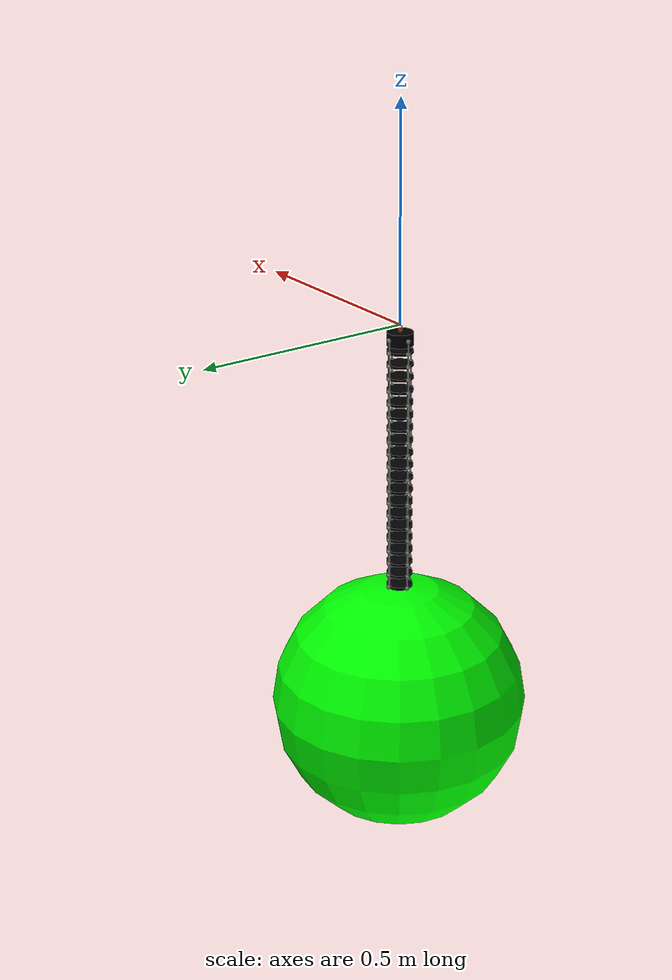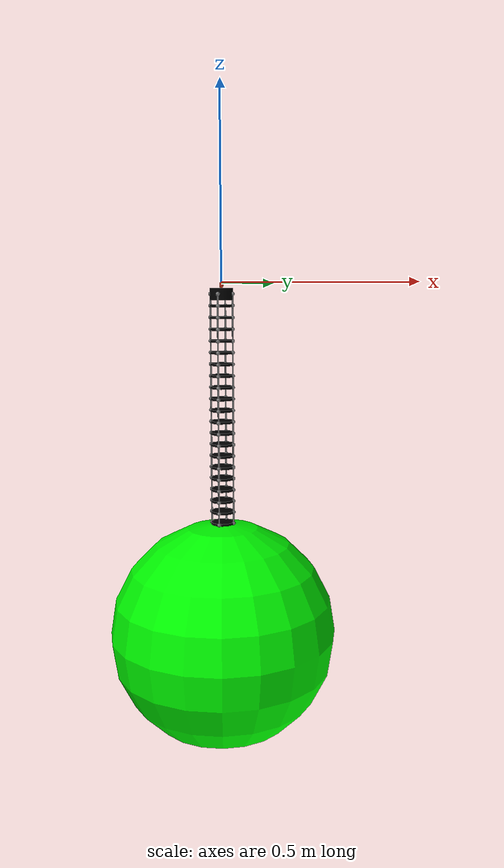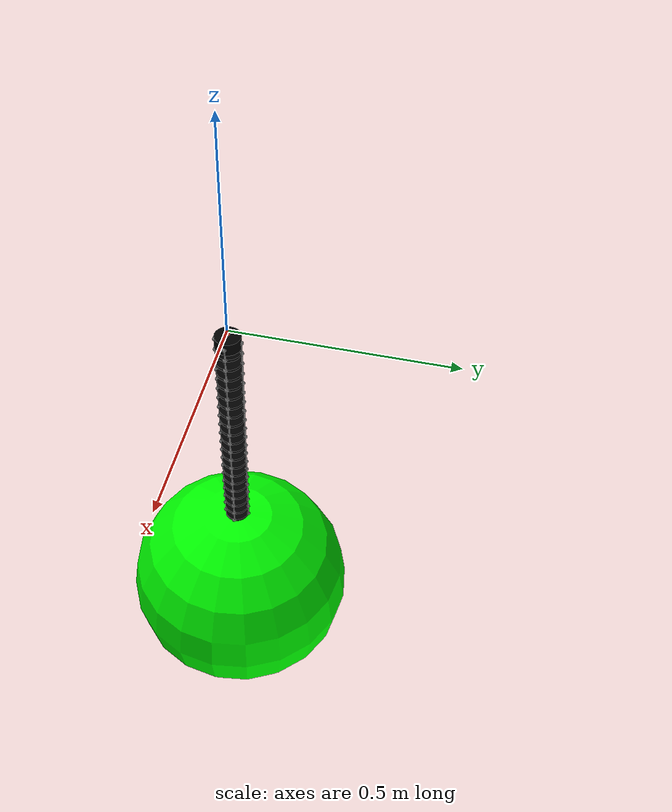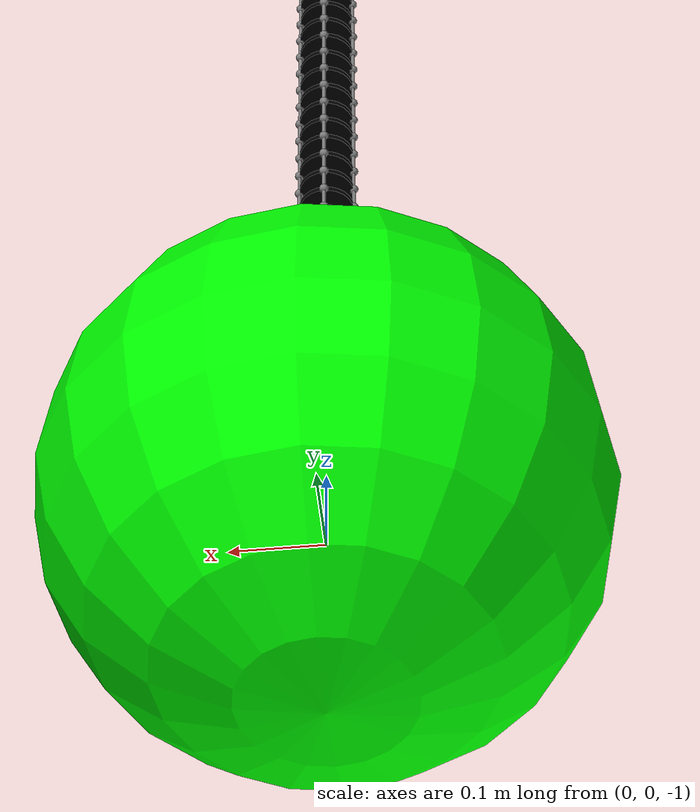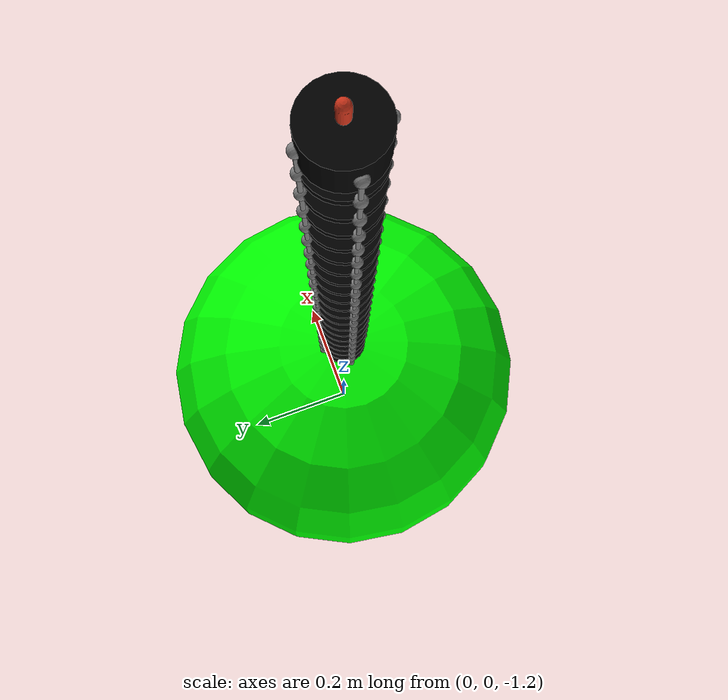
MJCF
<mujoco model="trunk">
        <compiler angle="radian"/>
        <option timestep="0.002"/>
        <extension>
            <plugin plugin="mujoco.elasticity.cable">
            <instance name="compositeactuated">
                <config key="twist" value="1e8"/>
                <config key="bend" value="1e8"/>
                <config key="vmax" value="0"/>
            </instance>
            </plugin>
        </extension>

        <visual>
            <global offwidth="1920" offheight="1080" elevation="0"/>
        </visual>
        <asset>
            <texture type="skybox" builtin="gradient" rgb1=".6 .8 1" rgb2=".6 .8 1" width="1" height="1"/>
        </asset>

        <worldbody>
            <light pos="0 -1 -1" dir="0 -1 -1" diffuse="1 1 1"/>
            <body name="base" pos="0 0 0" quat="0 -0.707107 0 0.707107">
                <geom name="base" size="0.005 0.005" pos="0.005 0 0" quat="0.707107 0 -0.707107 0" type="capsule" rgba="0.8 0.2 0.1 1"/>

        <body name="link_1" pos="0.030000000000000002 0 0">

            <geom name="geom_1" size="0.03 0.015000000000000001" density="0.01" pos="0 0 0" quat="0.707107 0 -0.707107 0" type="cylinder" rgba="0 0 0 1"/>
            <site name="site_y_front_1" pos="0 0.03 0"/>
            <site name="site_y_back_1" pos="0 -0.03 0"/>
            <site name="site_z_front_1" pos="0 0 0.03"/>
            <site name="site_z_back_1" pos="0 0 -0.03"/>

        <body name="link_2" pos="0.030000000000000002 0 0">
            <joint name="joint_2" pos="0 0 0" type="ball" group="3" actuatorfrclimited="false" armature="0.01" damping="1.0" stiffness="20.0"/>
            <geom name="geom_2" size="0.03 0.003" density="0.01" pos="0 0 0" quat="0.707107 0 -0.707107 0" type="cylinder" rgba="0 0 0 1"/>
            <site name="site_y_front_2" pos="0 0.03 0"/>
            <site name="site_y_back_2" pos="0 -0.03 0"/>
            <site name="site_z_front_2" pos="0 0 0.03"/>
            <site name="site_z_back_2" pos="0 0 -0.03"/>

        <body name="link_3" pos="0.030000000000000002 0 0">
            <joint name="joint_3" pos="0 0 0" type="ball" group="3" actuatorfrclimited="false" armature="0.01" damping="1.0" stiffness="20.0"/>
            <geom name="geom_3" size="0.03 0.003" density="0.01" pos="0 0 0" quat="0.707107 0 -0.707107 0" type="cylinder" rgba="0 0 0 1"/>
            <site name="site_y_front_3" pos="0 0.03 0"/>
            <site name="site_y_back_3" pos="0 -0.03 0"/>
            <site name="site_z_front_3" pos="0 0 0.03"/>
            <site name="site_z_back_3" pos="0 0 -0.03"/>

        <body name="link_4" pos="0.030000000000000002 0 0">
            <joint name="joint_4" pos="0 0 0" type="ball" group="3" actuatorfrclimited="false" armature="0.01" damping="1.0" stiffness="20.0"/>
            <geom name="geom_4" size="0.03 0.003" density="0.01" pos="0 0 0" quat="0.707107 0 -0.707107 0" type="cylinder" rgba="0 0 0 1"/>
            <site name="site_y_front_4" pos="0 0.03 0"/>
            <site name="site_y_back_4" pos="0 -0.03 0"/>
            <site name="site_z_front_4" pos="0 0 0.03"/>
            <site name="site_z_back_4" pos="0 0 -0.03"/>

        <body name="link_5" pos="0.030000000000000002 0 0">
            <joint name="joint_5" pos="0 0 0" type="ball" group="3" actuatorfrclimited="false" armature="0.01" damping="1.0" stiffness="20.0"/>
            <geom name="geom_5" size="0.03 0.003" density="0.01" pos="0 0 0" quat="0.707107 0 -0.707107 0" type="cylinder" rgba="0 0 0 1"/>
            <site name="site_y_front_5" pos="0 0.03 0"/>
            <site name="site_y_back_5" pos="0 -0.03 0"/>
            <site name="site_z_front_5" pos="0 0 0.03"/>
            <site name="site_z_back_5" pos="0 0 -0.03"/>

        <body name="link_6" pos="0.030000000000000002 0 0">
            <joint name="joint_6" pos="0 0 0" type="ball" group="3" actuatorfrclimited="false" armature="0.01" damping="1.0" stiffness="20.0"/>
            <geom name="geom_6" size="0.03 0.003" density="0.01" pos="0 0 0" quat="0.707107 0 -0.707107 0" type="cylinder" rgba="0 0 0 1"/>
            <site name="site_y_front_6" pos="0 0.03 0"/>
            <site name="site_y_back_6" pos="0 -0.03 0"/>
            <site name="site_z_front_6" pos="0 0 0.03"/>
            <site name="site_z_back_6" pos="0 0 -0.03"/>

        <body name="link_7" pos="0.030000000000000002 0 0">
            <joint name="joint_7" pos="0 0 0" type="ball" group="3" actuatorfrclimited="false" armature="0.01" damping="1.0" stiffness="20.0"/>
            <geom name="geom_7" size="0.03 0.003" density="0.01" pos="0 0 0" quat="0.707107 0 -0.707107 0" type="cylinder" rgba="0 0 0 1"/>
            <site name="site_y_front_7" pos="0 0.03 0"/>
            <site name="site_y_back_7" pos="0 -0.03 0"/>
            <site name="site_z_front_7" pos="0 0 0.03"/>
            <site name="site_z_back_7" pos="0 0 -0.03"/>

        <body name="link_8" pos="0.030000000000000002 0 0">
            <joint name="joint_8" pos="0 0 0" type="ball" group="3" actuatorfrclimited="false" armature="0.01" damping="1.0" stiffness="20.0"/>
            <geom name="geom_8" size="0.03 0.003" density="0.01" pos="0 0 0" quat="0.707107 0 -0.707107 0" type="cylinder" rgba="0 0 0 1"/>
            <site name="site_y_front_8" pos="0 0.03 0"/>
            <site name="site_y_back_8" pos="0 -0.03 0"/>
            <site name="site_z_front_8" pos="0 0 0.03"/>
            <site name="site_z_back_8" pos="0 0 -0.03"/>

        <body name="link_9" pos="0.030000000000000002 0 0">
            <joint name="joint_9" pos="0 0 0" type="ball" group="3" actuatorfrclimited="false" armature="0.01" damping="1.0" stiffness="20.0"/>
            <geom name="geom_9" size="0.03 0.003" density="0.01" pos="0 0 0" quat="0.707107 0 -0.707107 0" type="cylinder" rgba="0 0 0 1"/>
            <site name="site_y_front_9" pos="0 0.03 0"/>
            <site name="site_y_back_9" pos="0 -0.03 0"/>
            <site name="site_z_front_9" pos="0 0 0.03"/>
            <site name="site_z_back_9" pos="0 0 -0.03"/>

        <body name="link_10" pos="0.030000000000000002 0 0">
            <joint name="joint_10" pos="0 0 0" type="ball" group="3" actuatorfrclimited="false" armature="0.01" damping="1.0" stiffness="20.0"/>
            <geom name="geom_10" size="0.03 0.003" density="0.01" pos="0 0 0" quat="0.707107 0 -0.707107 0" type="cylinder" rgba="0 0 0 1"/>
            <site name="site_y_front_10" pos="0 0.03 0"/>
            <site name="site_y_back_10" pos="0 -0.03 0"/>
            <site name="site_z_front_10" pos="0 0 0.03"/>
            <site name="site_z_back_10" pos="0 0 -0.03"/>

        <body name="link_11" pos="0.030000000000000002 0 0">
            <joint name="joint_11" pos="0 0 0" type="ball" group="3" actuatorfrclimited="false" armature="0.01" damping="1.0" stiffness="20.0"/>
            <geom name="geom_11" size="0.03 0.003" density="0.01" pos="0 0 0" quat="0.707107 0 -0.707107 0" type="cylinder" rgba="0 0 0 1"/>
            <site name="site_y_front_11" pos="0 0.03 0"/>
            <site name="site_y_back_11" pos="0 -0.03 0"/>
            <site name="site_z_front_11" pos="0 0 0.03"/>
            <site name="site_z_back_11" pos="0 0 -0.03"/>

        <body name="link_12" pos="0.030000000000000002 0 0">
            <joint name="joint_12" pos="0 0 0" type="ball" group="3" actuatorfrclimited="false" armature="0.01" damping="1.0" stiffness="20.0"/>
            <geom name="geom_12" size="0.03 0.003" density="0.01" pos="0 0 0" quat="0.707107 0 -0.707107 0" type="cylinder" rgba="0 0 0 1"/>
            <site name="site_y_front_12" pos="0 0.03 0"/>
            <site name="site_y_back_12" pos="0 -0.03 0"/>
            <site name="site_z_front_12" pos="0 0 0.03"/>
            <site name="site_z_back_12" pos="0 0 -0.03"/>

        <body name="link_13" pos="0.030000000000000002 0 0">
            <joint name="joint_13" pos="0 0 0" type="ball" group="3" actuatorfrclimited="false" armature="0.01" damping="1.0" stiffness="20.0"/>
            <geom name="geom_13" size="0.03 0.003" density="0.01" pos="0 0 0" quat="0.707107 0 -0.707107 0" type="cylinder" rgba="0 0 0 1"/>
            <site name="site_y_front_13" pos="0 0.03 0"/>
            <site name="site_y_back_13" pos="0 -0.03 0"/>
            <site name="site_z_front_13" pos="0 0 0.03"/>
            <site name="site_z_back_13" pos="0 0 -0.03"/>

        <body name="link_14" pos="0.030000000000000002 0 0">
            <joint name="joint_14" pos="0 0 0" type="ball" group="3" actuatorfrclimited="false" armature="0.01" damping="1.0" stiffness="20.0"/>
            <geom name="geom_14" size="0.03 0.003" density="0.01" pos="0 0 0" quat="0.707107 0 -0.707107 0" type="cylinder" rgba="0 0 0 1"/>
            <site name="site_y_front_14" pos="0 0.03 0"/>
            <site name="site_y_back_14" pos="0 -0.03 0"/>
            <site name="site_z_front_14" pos="0 0 0.03"/>
            <site name="site_z_back_14" pos="0 0 -0.03"/>

        <body name="link_15" pos="0.030000000000000002 0 0">
            <joint name="joint_15" pos="0 0 0" type="ball" group="3" actuatorfrclimited="false" armature="0.01" damping="1.0" stiffness="20.0"/>
            <geom name="geom_15" size="0.03 0.003" density="0.01" pos="0 0 0" quat="0.707107 0 -0.707107 0" type="cylinder" rgba="0 0 0 1"/>
            <site name="site_y_front_15" pos="0 0.03 0"/>
            <site name="site_y_back_15" pos="0 -0.03 0"/>
            <site name="site_z_front_15" pos="0 0 0.03"/>
            <site name="site_z_back_15" pos="0 0 -0.03"/>

        <body name="link_16" pos="0.030000000000000002 0 0">
            <joint name="joint_16" pos="0 0 0" type="ball" group="3" actuatorfrclimited="false" armature="0.01" damping="1.0" stiffness="20.0"/>
            <geom name="geom_16" size="0.03 0.003" density="0.01" pos="0 0 0" quat="0.707107 0 -0.707107 0" type="cylinder" rgba="0 0 0 1"/>
            <site name="site_y_front_16" pos="0 0.03 0"/>
            <site name="site_y_back_16" pos="0 -0.03 0"/>
            <site name="site_z_front_16" pos="0 0 0.03"/>
            <site name="site_z_back_16" pos="0 0 -0.03"/>

        <body name="link_17" pos="0.030000000000000002 0 0">
            <joint name="joint_17" pos="0 0 0" type="ball" group="3" actuatorfrclimited="false" armature="0.01" damping="1.0" stiffness="20.0"/>
            <geom name="geom_17" size="0.03 0.003" density="0.01" pos="0 0 0" quat="0.707107 0 -0.707107 0" type="cylinder" rgba="0 0 0 1"/>
            <site name="site_y_front_17" pos="0 0.03 0"/>
            <site name="site_y_back_17" pos="0 -0.03 0"/>
            <site name="site_z_front_17" pos="0 0 0.03"/>
            <site name="site_z_back_17" pos="0 0 -0.03"/>

        <body name="link_18" pos="0.030000000000000002 0 0">
            <joint name="joint_18" pos="0 0 0" type="ball" group="3" actuatorfrclimited="false" armature="0.01" damping="1.0" stiffness="20.0"/>
            <geom name="geom_18" size="0.03 0.003" density="0.01" pos="0 0 0" quat="0.707107 0 -0.707107 0" type="cylinder" rgba="0 0 0 1"/>
            <site name="site_y_front_18" pos="0 0.03 0"/>
            <site name="site_y_back_18" pos="0 -0.03 0"/>
            <site name="site_z_front_18" pos="0 0 0.03"/>
            <site name="site_z_back_18" pos="0 0 -0.03"/>

        <body name="link_19" pos="0.030000000000000002 0 0">
            <joint name="joint_19" pos="0 0 0" type="ball" group="3" actuatorfrclimited="false" armature="0.01" damping="1.0" stiffness="20.0"/>
            <geom name="geom_19" size="0.03 0.003" density="0.01" pos="0 0 0" quat="0.707107 0 -0.707107 0" type="cylinder" rgba="0 0 0 1"/>
            <site name="site_y_front_19" pos="0 0.03 0"/>
            <site name="site_y_back_19" pos="0 -0.03 0"/>
            <site name="site_z_front_19" pos="0 0 0.03"/>
            <site name="site_z_back_19" pos="0 0 -0.03"/>

        <body name="link_20" pos="0.030000000000000002 0 0">
            <joint name="joint_20" pos="0 0 0" type="ball" group="3" actuatorfrclimited="false" armature="0.01" damping="1.0" stiffness="20.0"/>
            <geom name="geom_20" size="0.03 0.003" density="0.01" pos="0 0 0" quat="0.707107 0 -0.707107 0" type="cylinder" rgba="0 0 0 1"/>
            <site name="site_y_front_20" pos="0 0.03 0"/>
            <site name="site_y_back_20" pos="0 -0.03 0"/>
            <site name="site_z_front_20" pos="0 0 0.03"/>
            <site name="site_z_back_20" pos="0 0 -0.03"/>

        <body name="link_21" pos="0.030000000000000002 0 0">
            <joint name="joint_21" pos="0 0 0" type="ball" group="3" actuatorfrclimited="false" armature="0.01" damping="1.0" stiffness="20.0"/>
            <geom name="geom_21" size="0.03 0.003" density="0.01" pos="0 0 0" quat="0.707107 0 -0.707107 0" type="cylinder" rgba="0 0 0 1"/>
            <site name="site_y_front_21" pos="0 0.03 0"/>
            <site name="site_y_back_21" pos="0 -0.03 0"/>
            <site name="site_z_front_21" pos="0 0 0.03"/>
            <site name="site_z_back_21" pos="0 0 -0.03"/>

        <body name="link_22" pos="0.030000000000000002 0 0">
            <joint name="joint_22" pos="0 0 0" type="ball" group="3" actuatorfrclimited="false" armature="0.01" damping="1.0" stiffness="20.0"/>
            <geom name="geom_22" size="0.03 0.003" density="0.01" pos="0 0 0" quat="0.707107 0 -0.707107 0" type="cylinder" rgba="0 0 0 1"/>
            <site name="site_y_front_22" pos="0 0.03 0"/>
            <site name="site_y_back_22" pos="0 -0.03 0"/>
            <site name="site_z_front_22" pos="0 0 0.03"/>
            <site name="site_z_back_22" pos="0 0 -0.03"/>

        <body name="link_23" pos="0.030000000000000002 0 0">
            <joint name="joint_23" pos="0 0 0" type="ball" group="3" actuatorfrclimited="false" armature="0.01" damping="1.0" stiffness="20.0"/>
            <geom name="geom_23" size="0.03 0.003" density="0.01" pos="0 0 0" quat="0.707107 0 -0.707107 0" type="cylinder" rgba="0 0 0 1"/>
            <site name="site_y_front_23" pos="0 0.03 0"/>
            <site name="site_y_back_23" pos="0 -0.03 0"/>
            <site name="site_z_front_23" pos="0 0 0.03"/>
            <site name="site_z_back_23" pos="0 0 -0.03"/>

        <body name="link_24" pos="0.030000000000000002 0 0">
            <joint name="joint_24" pos="0 0 0" type="ball" group="3" actuatorfrclimited="false" armature="0.01" damping="1.0" stiffness="20.0"/>
            <geom name="geom_24" size="0.03 0.003" density="0.01" pos="0 0 0" quat="0.707107 0 -0.707107 0" type="cylinder" rgba="0 0 0 1"/>
            <site name="site_y_front_24" pos="0 0.03 0"/>
            <site name="site_y_back_24" pos="0 -0.03 0"/>
            <site name="site_z_front_24" pos="0 0 0.03"/>
            <site name="site_z_back_24" pos="0 0 -0.03"/>

        <body name="link_25" pos="0.030000000000000002 0 0">
            <joint name="joint_25" pos="0 0 0" type="ball" group="3" actuatorfrclimited="false" armature="0.01" damping="1.0" stiffness="20.0"/>
            <geom name="geom_25" size="0.03 0.003" density="0.01" pos="0 0 0" quat="0.707107 0 -0.707107 0" type="cylinder" rgba="0 0 0 1"/>
            <site name="site_y_front_25" pos="0 0.03 0"/>
            <site name="site_y_back_25" pos="0 -0.03 0"/>
            <site name="site_z_front_25" pos="0 0 0.03"/>
            <site name="site_z_back_25" pos="0 0 -0.03"/>

        <body name="link_26" pos="0.030000000000000002 0 0">
            <joint name="joint_26" pos="0 0 0" type="ball" group="3" actuatorfrclimited="false" armature="0.01" damping="1.0" stiffness="20.0"/>
            <geom name="geom_26" size="0.03 0.003" density="0.01" pos="0 0 0" quat="0.707107 0 -0.707107 0" type="cylinder" rgba="0 0 0 1"/>
            <site name="site_y_front_26" pos="0 0.03 0"/>
            <site name="site_y_back_26" pos="0 -0.03 0"/>
            <site name="site_z_front_26" pos="0 0 0.03"/>
            <site name="site_z_back_26" pos="0 0 -0.03"/>

        <body name="link_27" pos="0.030000000000000002 0 0">
            <joint name="joint_27" pos="0 0 0" type="ball" group="3" actuatorfrclimited="false" armature="0.01" damping="1.0" stiffness="20.0"/>
            <geom name="geom_27" size="0.03 0.003" density="0.01" pos="0 0 0" quat="0.707107 0 -0.707107 0" type="cylinder" rgba="0 0 0 1"/>
            <site name="site_y_front_27" pos="0 0.03 0"/>
            <site name="site_y_back_27" pos="0 -0.03 0"/>
            <site name="site_z_front_27" pos="0 0 0.03"/>
            <site name="site_z_back_27" pos="0 0 -0.03"/>

        <body name="link_28" pos="0.030000000000000002 0 0">
            <joint name="joint_28" pos="0 0 0" type="ball" group="3" actuatorfrclimited="false" armature="0.01" damping="1.0" stiffness="20.0"/>
            <geom name="geom_28" size="0.03 0.003" density="0.01" pos="0 0 0" quat="0.707107 0 -0.707107 0" type="cylinder" rgba="0 0 0 1"/>
            <site name="site_y_front_28" pos="0 0.03 0"/>
            <site name="site_y_back_28" pos="0 -0.03 0"/>
            <site name="site_z_front_28" pos="0 0 0.03"/>
            <site name="site_z_back_28" pos="0 0 -0.03"/>

        <body name="link_29" pos="0.030000000000000002 0 0">
            <joint name="joint_29" pos="0 0 0" type="ball" group="3" actuatorfrclimited="false" armature="0.01" damping="1.0" stiffness="20.0"/>
            <geom name="geom_29" size="0.03 0.003" density="0.01" pos="0 0 0" quat="0.707107 0 -0.707107 0" type="cylinder" rgba="0 0 0 1"/>
            <site name="site_y_front_29" pos="0 0.03 0"/>
            <site name="site_y_back_29" pos="0 -0.03 0"/>
            <site name="site_z_front_29" pos="0 0 0.03"/>
            <site name="site_z_back_29" pos="0 0 -0.03"/>

        <body name="link_30" pos="0.030000000000000002 0 0">
            <joint name="joint_30" pos="0 0 0" type="ball" group="3" actuatorfrclimited="false" armature="0.01" damping="1.0" stiffness="20.0"/>
            <geom name="geom_30" size="0.03 0.003" density="0.01" pos="0 0 0" quat="0.707107 0 -0.707107 0" type="cylinder" rgba="0 0 0 1"/>
            <site name="site_y_front_30" pos="0 0.03 0"/>
            <site name="site_y_back_30" pos="0 -0.03 0"/>
            <site name="site_z_front_30" pos="0 0 0.03"/>
            <site name="site_z_back_30" pos="0 0 -0.03"/>

        <body name="payload" pos="0.030000000000000002 0 0">
            <geom name="payload_geom" size="0.3" mass="0.1" pos="0 0 0" quat="0.707107 0 -0.707107 0" type="sphere" rgba="0 1 0 1"/>
        </body>

        </body>

        </body>

        </body>

        </body>

        </body>

        </body>

        </body>

        </body>

        </body>

        </body>

        </body>

        </body>

        </body>

        </body>

        </body>

        </body>

        </body>

        </body>

        </body>

        </body>

        </body>

        </body>

        </body>

        </body>

        </body>

        </body>

        </body>

        </body>

        </body>

        </body>

            </body>
        </worldbody>

        <tendon>
            <spatial name="tendon_1_y_front" stiffness="0.0" damping="0.0" width="0.002">
                <site site="site_y_front_1"/>
<site site="site_y_front_2"/>
<site site="site_y_front_3"/>
<site site="site_y_front_4"/>
<site site="site_y_front_5"/>
<site site="site_y_front_6"/>
<site site="site_y_front_7"/>
<site site="site_y_front_8"/>
<site site="site_y_front_9"/>
<site site="site_y_front_10"/>
            </spatial>
        </tendon>

        <tendon>
            <spatial name="tendon_1_y_back" stiffness="0.0" damping="0.0" width="0.002">
                <site site="site_y_back_1"/>
<site site="site_y_back_2"/>
<site site="site_y_back_3"/>
<site site="site_y_back_4"/>
<site site="site_y_back_5"/>
<site site="site_y_back_6"/>
<site site="site_y_back_7"/>
<site site="site_y_back_8"/>
<site site="site_y_back_9"/>
<site site="site_y_back_10"/>
            </spatial>
        </tendon>

        <tendon>
            <spatial name="tendon_1_z_front" stiffness="0.0" damping="0.0" width="0.002">
                <site site="site_z_front_1"/>
<site site="site_z_front_2"/>
<site site="site_z_front_3"/>
<site site="site_z_front_4"/>
<site site="site_z_front_5"/>
<site site="site_z_front_6"/>
<site site="site_z_front_7"/>
<site site="site_z_front_8"/>
<site site="site_z_front_9"/>
<site site="site_z_front_10"/>
            </spatial>
        </tendon>

        <tendon>
            <spatial name="tendon_1_z_back" stiffness="0.0" damping="0.0" width="0.002">
                <site site="site_z_back_1"/>
<site site="site_z_back_2"/>
<site site="site_z_back_3"/>
<site site="site_z_back_4"/>
<site site="site_z_back_5"/>
<site site="site_z_back_6"/>
<site site="site_z_back_7"/>
<site site="site_z_back_8"/>
<site site="site_z_back_9"/>
<site site="site_z_back_10"/>
            </spatial>
        </tendon>

        <tendon>
            <spatial name="tendon_2_y_front" stiffness="0.0" damping="0.0" width="0.002">
                <site site="site_y_front_1"/>
<site site="site_y_front_2"/>
<site site="site_y_front_3"/>
<site site="site_y_front_4"/>
<site site="site_y_front_5"/>
<site site="site_y_front_6"/>
<site site="site_y_front_7"/>
<site site="site_y_front_8"/>
<site site="site_y_front_9"/>
<site site="site_y_front_10"/>
<site site="site_y_front_11"/>
<site site="site_y_front_12"/>
<site site="site_y_front_13"/>
<site site="site_y_front_14"/>
<site site="site_y_front_15"/>
<site site="site_y_front_16"/>
<site site="site_y_front_17"/>
<site site="site_y_front_18"/>
<site site="site_y_front_19"/>
<site site="site_y_front_20"/>
            </spatial>
        </tendon>

        <tendon>
            <spatial name="tendon_2_y_back" stiffness="0.0" damping="0.0" width="0.002">
                <site site="site_y_back_1"/>
<site site="site_y_back_2"/>
<site site="site_y_back_3"/>
<site site="site_y_back_4"/>
<site site="site_y_back_5"/>
<site site="site_y_back_6"/>
<site site="site_y_back_7"/>
<site site="site_y_back_8"/>
<site site="site_y_back_9"/>
<site site="site_y_back_10"/>
<site site="site_y_back_11"/>
<site site="site_y_back_12"/>
<site site="site_y_back_13"/>
<site site="site_y_back_14"/>
<site site="site_y_back_15"/>
<site site="site_y_back_16"/>
<site site="site_y_back_17"/>
<site site="site_y_back_18"/>
<site site="site_y_back_19"/>
<site site="site_y_back_20"/>
            </spatial>
        </tendon>

        <tendon>
            <spatial name="tendon_2_z_front" stiffness="0.0" damping="0.0" width="0.002">
                <site site="site_z_front_1"/>
<site site="site_z_front_2"/>
<site site="site_z_front_3"/>
<site site="site_z_front_4"/>
<site site="site_z_front_5"/>
<site site="site_z_front_6"/>
<site site="site_z_front_7"/>
<site site="site_z_front_8"/>
<site site="site_z_front_9"/>
<site site="site_z_front_10"/>
<site site="site_z_front_11"/>
<site site="site_z_front_12"/>
<site site="site_z_front_13"/>
<site site="site_z_front_14"/>
<site site="site_z_front_15"/>
<site site="site_z_front_16"/>
<site site="site_z_front_17"/>
<site site="site_z_front_18"/>
<site site="site_z_front_19"/>
<site site="site_z_front_20"/>
            </spatial>
        </tendon>

        <tendon>
            <spatial name="tendon_2_z_back" stiffness="0.0" damping="0.0" width="0.002">
                <site site="site_z_back_1"/>
<site site="site_z_back_2"/>
<site site="site_z_back_3"/>
<site site="site_z_back_4"/>
<site site="site_z_back_5"/>
<site site="site_z_back_6"/>
<site site="site_z_back_7"/>
<site site="site_z_back_8"/>
<site site="site_z_back_9"/>
<site site="site_z_back_10"/>
<site site="site_z_back_11"/>
<site site="site_z_back_12"/>
<site site="site_z_back_13"/>
<site site="site_z_back_14"/>
<site site="site_z_back_15"/>
<site site="site_z_back_16"/>
<site site="site_z_back_17"/>
<site site="site_z_back_18"/>
<site site="site_z_back_19"/>
<site site="site_z_back_20"/>
            </spatial>
        </tendon>

        <tendon>
            <spatial name="tendon_3_y_front" stiffness="0.0" damping="0.0" width="0.002">
                <site site="site_y_front_1"/>
<site site="site_y_front_2"/>
<site site="site_y_front_3"/>
<site site="site_y_front_4"/>
<site site="site_y_front_5"/>
<site site="site_y_front_6"/>
<site site="site_y_front_7"/>
<site site="site_y_front_8"/>
<site site="site_y_front_9"/>
<site site="site_y_front_10"/>
<site site="site_y_front_11"/>
<site site="site_y_front_12"/>
<site site="site_y_front_13"/>
<site site="site_y_front_14"/>
<site site="site_y_front_15"/>
<site site="site_y_front_16"/>
<site site="site_y_front_17"/>
<site site="site_y_front_18"/>
<site site="site_y_front_19"/>
<site site="site_y_front_20"/>
<site site="site_y_front_21"/>
<site site="site_y_front_22"/>
<site site="site_y_front_23"/>
<site site="site_y_front_24"/>
<site site="site_y_front_25"/>
<site site="site_y_front_26"/>
<site site="site_y_front_27"/>
<site site="site_y_front_28"/>
<site site="site_y_front_29"/>
<site site="site_y_front_30"/>
            </spatial>
        </tendon>

        <tendon>
            <spatial name="tendon_3_y_back" stiffness="0.0" damping="0.0" width="0.002">
                <site site="site_y_back_1"/>
<site site="site_y_back_2"/>
<site site="site_y_back_3"/>
<site site="site_y_back_4"/>
<site site="site_y_back_5"/>
<site site="site_y_back_6"/>
<site site="site_y_back_7"/>
<site site="site_y_back_8"/>
<site site="site_y_back_9"/>
<site site="site_y_back_10"/>
<site site="site_y_back_11"/>
<site site="site_y_back_12"/>
<site site="site_y_back_13"/>
<site site="site_y_back_14"/>
<site site="site_y_back_15"/>
<site site="site_y_back_16"/>
<site site="site_y_back_17"/>
<site site="site_y_back_18"/>
<site site="site_y_back_19"/>
<site site="site_y_back_20"/>
<site site="site_y_back_21"/>
<site site="site_y_back_22"/>
<site site="site_y_back_23"/>
<site site="site_y_back_24"/>
<site site="site_y_back_25"/>
<site site="site_y_back_26"/>
<site site="site_y_back_27"/>
<site site="site_y_back_28"/>
<site site="site_y_back_29"/>
<site site="site_y_back_30"/>
            </spatial>
        </tendon>

        <tendon>
            <spatial name="tendon_3_z_front" stiffness="0.0" damping="0.0" width="0.002">
                <site site="site_z_front_1"/>
<site site="site_z_front_2"/>
<site site="site_z_front_3"/>
<site site="site_z_front_4"/>
<site site="site_z_front_5"/>
<site site="site_z_front_6"/>
<site site="site_z_front_7"/>
<site site="site_z_front_8"/>
<site site="site_z_front_9"/>
<site site="site_z_front_10"/>
<site site="site_z_front_11"/>
<site site="site_z_front_12"/>
<site site="site_z_front_13"/>
<site site="site_z_front_14"/>
<site site="site_z_front_15"/>
<site site="site_z_front_16"/>
<site site="site_z_front_17"/>
<site site="site_z_front_18"/>
<site site="site_z_front_19"/>
<site site="site_z_front_20"/>
<site site="site_z_front_21"/>
<site site="site_z_front_22"/>
<site site="site_z_front_23"/>
<site site="site_z_front_24"/>
<site site="site_z_front_25"/>
<site site="site_z_front_26"/>
<site site="site_z_front_27"/>
<site site="site_z_front_28"/>
<site site="site_z_front_29"/>
<site site="site_z_front_30"/>
            </spatial>
        </tendon>

        <tendon>
            <spatial name="tendon_3_z_back" stiffness="0.0" damping="0.0" width="0.002">
                <site site="site_z_back_1"/>
<site site="site_z_back_2"/>
<site site="site_z_back_3"/>
<site site="site_z_back_4"/>
<site site="site_z_back_5"/>
<site site="site_z_back_6"/>
<site site="site_z_back_7"/>
<site site="site_z_back_8"/>
<site site="site_z_back_9"/>
<site site="site_z_back_10"/>
<site site="site_z_back_11"/>
<site site="site_z_back_12"/>
<site site="site_z_back_13"/>
<site site="site_z_back_14"/>
<site site="site_z_back_15"/>
<site site="site_z_back_16"/>
<site site="site_z_back_17"/>
<site site="site_z_back_18"/>
<site site="site_z_back_19"/>
<site site="site_z_back_20"/>
<site site="site_z_back_21"/>
<site site="site_z_back_22"/>
<site site="site_z_back_23"/>
<site site="site_z_back_24"/>
<site site="site_z_back_25"/>
<site site="site_z_back_26"/>
<site site="site_z_back_27"/>
<site site="site_z_back_28"/>
<site site="site_z_back_29"/>
<site site="site_z_back_30"/>
            </spatial>
        </tendon>

        <actuator>
            <position tendon="tendon_1_y_front" /> <position tendon="tendon_1_y_back" /> <position tendon="tendon_1_z_front" /> <position tendon="tendon_1_z_back" /> <position tendon="tendon_2_y_front" /> <position tendon="tendon_2_y_back" /> <position tendon="tendon_2_z_front" /> <position tendon="tendon_2_z_back" /> <position tendon="tendon_3_y_front" /> <position tendon="tendon_3_y_back" /> <position tendon="tendon_3_z_front" /> <position tendon="tendon_3_z_back" />
        </actuator>

        <contact>

        <exclude body1="link_1" body2="link_2"/>

        <exclude body1="link_2" body2="link_3"/>

        <exclude body1="link_3" body2="link_4"/>

        <exclude body1="link_4" body2="link_5"/>

        <exclude body1="link_5" body2="link_6"/>

        <exclude body1="link_6" body2="link_7"/>

        <exclude body1="link_7" body2="link_8"/>

        <exclude body1="link_8" body2="link_9"/>

        <exclude body1="link_9" body2="link_10"/>

        <exclude body1="link_10" body2="link_11"/>

        <exclude body1="link_11" body2="link_12"/>

        <exclude body1="link_12" body2="link_13"/>

        <exclude body1="link_13" body2="link_14"/>

        <exclude body1="link_14" body2="link_15"/>

        <exclude body1="link_15" body2="link_16"/>

        <exclude body1="link_16" body2="link_17"/>

        <exclude body1="link_17" body2="link_18"/>

        <exclude body1="link_18" body2="link_19"/>

        <exclude body1="link_19" body2="link_20"/>

        <exclude body1="link_20" body2="link_21"/>

        <exclude body1="link_21" body2="link_22"/>

        <exclude body1="link_22" body2="link_23"/>

        <exclude body1="link_23" body2="link_24"/>

        <exclude body1="link_24" body2="link_25"/>

        <exclude body1="link_25" body2="link_26"/>

        <exclude body1="link_26" body2="link_27"/>

        <exclude body1="link_27" body2="link_28"/>

        <exclude body1="link_28" body2="link_29"/>

        <exclude body1="link_29" body2="link_30"/>

        </contact>

        <sensor>
            <force name="force_y_front_1" site="site_y_front_1"/><force name="force_y_back_1" site="site_y_back_1"/><force name="force_z_front_1" site="site_z_front_1"/><force name="force_z_back_1" site="site_z_back_1"/><force name="force_y_front_2" site="site_y_front_2"/><force name="force_y_back_2" site="site_y_back_2"/><force name="force_z_front_2" site="site_z_front_2"/><force name="force_z_back_2" site="site_z_back_2"/><force name="force_y_front_3" site="site_y_front_3"/><force name="force_y_back_3" site="site_y_back_3"/><force name="force_z_front_3" site="site_z_front_3"/><force name="force_z_back_3" site="site_z_back_3"/>
        </sensor>

    </mujoco>
